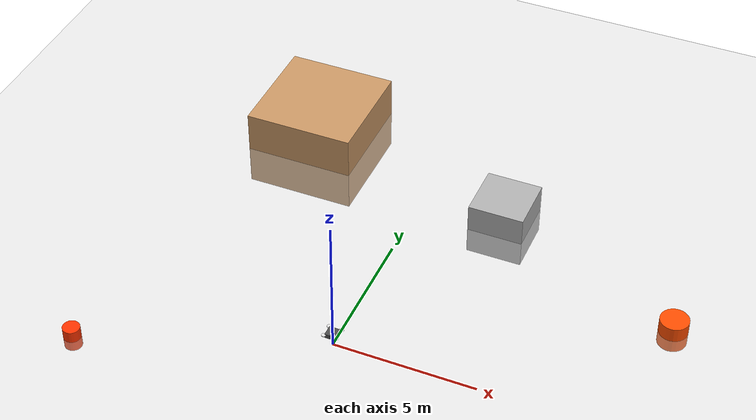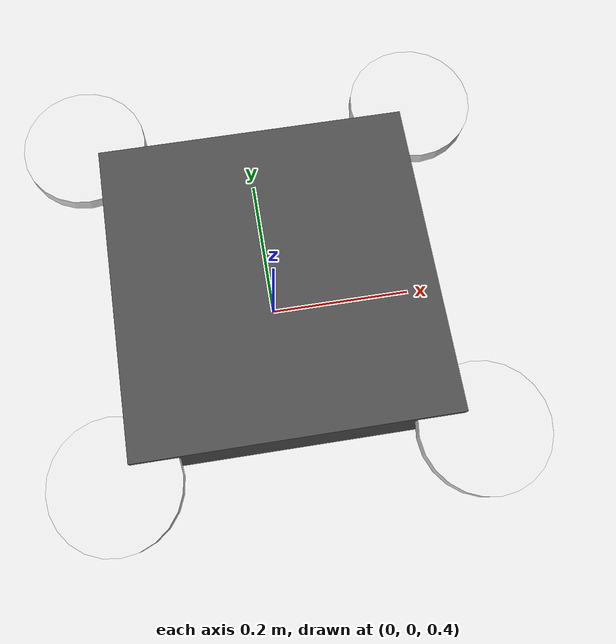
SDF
<?xml version="1.0" ?>
<sdf version="1.6">
  <world name="drone_test_world">

    <!-- Physics configuration -->
    <physics name="default_physics" default="0" type="ode">
      <max_step_size>0.004</max_step_size>
      <real_time_factor>1</real_time_factor>
      <real_time_update_rate>250</real_time_update_rate>
      <gravity>0 0 -9.81</gravity>
    </physics>

    <!-- Scene configuration -->
    <scene>
      <ambient>0.4 0.4 0.4 1</ambient>
      <background>0.7 0.7 0.7 1</background>
      <shadows>1</shadows>
    </scene>

    <!-- Plugin configurations -->
    <plugin filename="libignition-gazebo-physics-system.so" name="ignition::gazebo::systems::Physics">
    </plugin>
    <plugin filename="libignition-gazebo-user-commands-system.so" name="ignition::gazebo::systems::UserCommands">
    </plugin>
    <plugin filename="libignition-gazebo-scene-broadcaster-system.so" name="ignition::gazebo::systems::SceneBroadcaster">
    </plugin>
    <plugin filename="libignition-gazebo-sensors-system.so" name="ignition::gazebo::systems::Sensors">
      <render_engine>ogre2</render_engine>
    </plugin>

    <!-- A global light source -->
    <light type="directional" name="sun">
      <cast_shadows>true</cast_shadows>
      <pose>0 0 10 0 0 0</pose>
      <diffuse>0.8 0.8 0.8 1</diffuse>
      <specular>0.2 0.2 0.2 1</specular>
      <attenuation>
        <range>1000</range>
        <constant>0.9</constant>
        <linear>0.01</linear>
        <quadratic>0.001</quadratic>
      </attenuation>
      <direction>-0.5 0.1 -0.9</direction>
    </light>

    <!-- A ground plane -->
    <model name="ground_plane">
      <static>true</static>
      <link name="link">
        <collision name="collision">
          <geometry>
            <plane>
              <normal>0 0 1</normal>
              <size>100 100</size>
            </plane>
          </geometry>
        </collision>
        <visual name="visual">
          <geometry>
            <plane>
              <normal>0 0 1</normal>
              <size>100 100</size>
            </plane>
          </geometry>
          <material>
            <ambient>0.8 0.8 0.8 1</ambient>
            <diffuse>0.8 0.8 0.8 1</diffuse>
            <specular>0.8 0.8 0.8 1</specular>
          </material>
        </visual>
      </link>
    </model>

    <!-- Firefighting Drone -->
    <include>
      <uri>model://firefighting_drone</uri>
      <name>firefighting_drone</name>
      <pose>0 0 0.5 0 0 0</pose>
    </include>

    <!-- Test Fire Source 1 -->
    <model name="test_fire_1">
      <static>true</static>
      <pose>10 5 0 0 0 0</pose>

      <link name="fire_link">
        <visual name="fire_visual">
          <geometry>
            <cylinder>
              <radius>0.5</radius>
              <length>1.0</length>
            </cylinder>
          </geometry>
          <material>
            <ambient>1.0 0.0 0.0 1</ambient>
            <diffuse>1.0 0.3 0.0 1</diffuse>
            <specular>1.0 1.0 1.0 1</specular>
            <emissive>1.0 0.0 0.0 1</emissive>
          </material>
        </visual>

        <collision name="fire_collision">
          <geometry>
            <cylinder>
              <radius>0.5</radius>
              <length>1.0</length>
            </cylinder>
          </geometry>
        </collision>
      </link>
    </model>

    <!-- Test Fire Source 2 -->
    <model name="test_fire_2">
      <static>true</static>
      <pose>-8 -3 0 0 0 0</pose>

      <link name="fire_link">
        <visual name="fire_visual">
          <geometry>
            <cylinder>
              <radius>0.3</radius>
              <length>0.8</length>
            </cylinder>
          </geometry>
          <material>
            <ambient>1.0 0.0 0.0 1</ambient>
            <diffuse>1.0 0.2 0.0 1</diffuse>
            <specular>1.0 1.0 1.0 1</specular>
            <emissive>1.0 0.0 0.0 1</emissive>
          </material>
        </visual>

        <collision name="fire_collision">
          <geometry>
            <cylinder>
              <radius>0.3</radius>
              <length>0.8</length>
            </cylinder>
          </geometry>
        </collision>
      </link>
    </model>

    <!-- Obstacles for testing -->
    <model name="obstacle_1">
      <static>true</static>
      <pose>3 8 0 0 0 0</pose>

      <link name="obstacle_link">
        <visual name="obstacle_visual">
          <geometry>
            <box>
              <size>2 2 2</size>
            </box>
          </geometry>
          <material>
            <ambient>0.5 0.5 0.5 1</ambient>
            <diffuse>0.7 0.7 0.7 1</diffuse>
          </material>
        </visual>

        <collision name="obstacle_collision">
          <geometry>
            <box>
              <size>2 2 2</size>
            </box>
          </geometry>
        </collision>
      </link>
    </model>

    <!-- Building obstacle -->
    <model name="building_1">
      <static>true</static>
      <pose>-5 10 0 0 0 0</pose>

      <link name="building_link">
        <visual name="building_visual">
          <geometry>
            <box>
              <size>4 4 3</size>
            </box>
          </geometry>
          <material>
            <ambient>0.6 0.4 0.2 1</ambient>
            <diffuse>0.8 0.6 0.4 1</diffuse>
          </material>
        </visual>

        <collision name="building_collision">
          <geometry>
            <box>
              <size>4 4 3</size>
            </box>
          </geometry>
        </collision>
      </link>
    </model>

    <!-- GUI settings -->
    <gui fullscreen='0'>
      <camera name='user_camera'>
        <pose>-5 -5 8 0 0.5 0.78</pose>
        <view_controller>orbit</view_controller>
        <projection_type>perspective</projection_type>
      </camera>
    </gui>

  </world>
</sdf>

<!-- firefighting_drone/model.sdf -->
<sdf version="1.7">
<model name="firefighting_drone">
    <static>false</static>

    <link name="base_link">
        <pose>0 0 0 0 0 0</pose>
        <collision name="collision">
            <geometry>
                <box>
                    <size>0.4 0.4 0.15</size>
                </box>
            </geometry>
        </collision>

        <visual name="visual">
            <geometry>
                <box>
                    <size>0.4 0.4 0.15</size>
                </box>
            </geometry>
            <material>
                <ambient>0.2 0.2 0.2 1</ambient>
                <diffuse>0.3 0.3 0.3 1</diffuse>
                <specular>0.1 0.1 0.1 1</specular>
            </material>
        </visual>

        <inertial>
            <mass>1.5</mass>
            <pose>0 0 0 0 0 0</pose>
            <inertia>
                <ixx>0.025</ixx>
                <ixy>0</ixy>
                <ixz>0</ixz>
                <iyy>0.025</iyy>
                <iyz>0</iyz>
                <izz>0.04</izz>
            </inertia>
        </inertial>
    </link>

    <!-- Rotor links -->
    <link name="rotor_0">
        <pose>0.22 0.22 0.05 0 0 0</pose>
        <collision name="rotor_collision">
            <geometry>
                <cylinder>
                    <radius>0.08</radius>
                    <length>0.02</length>
                </cylinder>
            </geometry>
        </collision>
        <visual name="rotor_visual">
            <geometry>
                <cylinder>
                    <radius>0.08</radius>
                    <length>0.02</length>
                </cylinder>
            </geometry>
            <material>
                <ambient>0.8 0.8 0.8 1</ambient>
                <diffuse>0.9 0.9 0.9 1</diffuse>
            </material>
        </visual>
        <inertial>
            <mass>0.01</mass>
            <inertia>
                <ixx>0.0001</ixx>
                <ixy>0</ixy>
                <ixz>0</ixz>
                <iyy>0.0001</iyy>
                <iyz>0</iyz>
                <izz>0.0001</izz>
            </inertia>
        </inertial>
    </link>

    <link name="rotor_1">
        <pose>-0.22 0.22 0.05 0 0 0</pose>
        <collision name="rotor_collision">
            <geometry>
                <cylinder>
                    <radius>0.08</radius>
                    <length>0.02</length>
                </cylinder>
            </geometry>
        </collision>
        <visual name="rotor_visual">
            <geometry>
                <cylinder>
                    <radius>0.08</radius>
                    <length>0.02</length>
                </cylinder>
            </geometry>
            <material>
                <ambient>0.8 0.8 0.8 1</ambient>
                <diffuse>0.9 0.9 0.9 1</diffuse>
            </material>
        </visual>
        <inertial>
            <mass>0.01</mass>
            <inertia>
                <ixx>0.0001</ixx>
                <ixy>0</ixy>
                <ixz>0</ixz>
                <iyy>0.0001</iyy>
                <iyz>0</iyz>
                <izz>0.0001</izz>
            </inertia>
        </inertial>
    </link>

    <link name="rotor_2">
        <pose>-0.22 -0.22 0.05 0 0 0</pose>
        <collision name="rotor_collision">
            <geometry>
                <cylinder>
                    <radius>0.08</radius>
                    <length>0.02</length>
                </cylinder>
            </geometry>
        </collision>
        <visual name="rotor_visual">
            <geometry>
                <cylinder>
                    <radius>0.08</radius>
                    <length>0.02</length>
                </cylinder>
            </geometry>
            <material>
                <ambient>0.8 0.8 0.8 1</ambient>
                <diffuse>0.9 0.9 0.9 1</diffuse>
            </material>
        </visual>
        <inertial>
            <mass>0.01</mass>
            <inertia>
                <ixx>0.0001</ixx>
                <ixy>0</ixy>
                <ixz>0</ixz>
                <iyy>0.0001</iyy>
                <iyz>0</iyz>
                <izz>0.0001</izz>
            </inertia>
        </inertial>
    </link>

    <link name="rotor_3">
        <pose>0.22 -0.22 0.05 0 0 0</pose>
        <collision name="rotor_collision">
            <geometry>
                <cylinder>
                    <radius>0.08</radius>
                    <length>0.02</length>
                </cylinder>
            </geometry>
        </collision>
        <visual name="rotor_visual">
            <geometry>
                <cylinder>
                    <radius>0.08</radius>
                    <length>0.02</length>
                </cylinder>
            </geometry>
            <material>
                <ambient>0.8 0.8 0.8 1</ambient>
                <diffuse>0.9 0.9 0.9 1</diffuse>
            </material>
        </visual>
        <inertial>
            <mass>0.01</mass>
            <inertia>
                <ixx>0.0001</ixx>
                <ixy>0</ixy>
                <ixz>0</ixz>
                <iyy>0.0001</iyy>
                <iyz>0</iyz>
                <izz>0.0001</izz>
            </inertia>
        </inertial>
    </link>

    <!-- Joints to connect rotors to base -->
    <joint name="rotor_0_joint" type="revolute">
        <parent>base_link</parent>
        <child>rotor_0</child>
        <axis>
            <xyz>0 0 1</xyz>
        </axis>
    </joint>

    <joint name="rotor_1_joint" type="revolute">
        <parent>base_link</parent>
        <child>rotor_1</child>
        <axis>
            <xyz>0 0 1</xyz>
        </axis>
    </joint>

    <joint name="rotor_2_joint" type="revolute">
        <parent>base_link</parent>
        <child>rotor_2</child>
        <axis>
            <xyz>0 0 1</xyz>
        </axis>
    </joint>

    <joint name="rotor_3_joint" type="revolute">
        <parent>base_link</parent>
        <child>rotor_3</child>
        <axis>
            <xyz>0 0 1</xyz>
        </axis>
    </joint>

    <!-- Velocity control plugin (simpler approach) -->
    <plugin filename="libignition-gazebo-velocity-control-system.so" name="ignition::gazebo::systems::VelocityControl">
        <topic>model/firefighting_drone/cmd_vel</topic>
    </plugin>

    <!-- Joint position controller for rotors -->
    <plugin filename="libignition-gazebo-joint-position-controller-system.so" name="ignition::gazebo::systems::JointPositionController">
        <joint_name>rotor_0_joint</joint_name>
        <topic>model/firefighting_drone/joint/rotor_0_joint/cmd_vel</topic>
    </plugin>

    <plugin filename="libignition-gazebo-joint-position-controller-system.so" name="ignition::gazebo::systems::JointPositionController">
        <joint_name>rotor_1_joint</joint_name>
        <topic>model/firefighting_drone/joint/rotor_1_joint/cmd_vel</topic>
    </plugin>

    <plugin filename="libignition-gazebo-joint-position-controller-system.so" name="ignition::gazebo::systems::JointPositionController">
        <joint_name>rotor_2_joint</joint_name>
        <topic>model/firefighting_drone/joint/rotor_2_joint/cmd_vel</topic>
    </plugin>

    <plugin filename="libignition-gazebo-joint-position-controller-system.so" name="ignition::gazebo::systems::JointPositionController">
        <joint_name>rotor_3_joint</joint_name>
        <topic>model/firefighting_drone/joint/rotor_3_joint/cmd_vel</topic>
    </plugin>

    <!-- Odometry publisher -->
    <plugin filename="libignition-gazebo-odometry-publisher-system.so" name="ignition::gazebo::systems::OdometryPublisher">
        <odom_frame>firefighting_drone/odom</odom_frame>
        <robot_base_frame>firefighting_drone</robot_base_frame>
        <odom_topic>model/firefighting_drone/odometry</odom_topic>
        <odom_publish_frequency>50</odom_publish_frequency>
    </plugin>

    <!-- IMU sensor -->
    <plugin filename="libignition-gazebo-imu-system.so" name="ignition::gazebo::systems::Imu">
        <link_name>base_link</link_name>
        <topic>model/firefighting_drone/imu</topic>
        <initial_orientation_as_reference>false</initial_orientation_as_reference>
    </plugin>

    <!-- Pose publisher -->
    <plugin filename="libignition-gazebo-pose-publisher-system.so" name="ignition::gazebo::systems::PosePublisher">
        <publish_link_pose>true</publish_link_pose>
        <publish_collision_pose>false</publish_collision_pose>
        <publish_visual_pose>false</publish_visual_pose>
        <use_pose_vector_msg>true</use_pose_vector_msg>
        <static_publisher>true</static_publisher>
        <static_update_frequency>1</static_update_frequency>
    </plugin>

</model>
</sdf>
